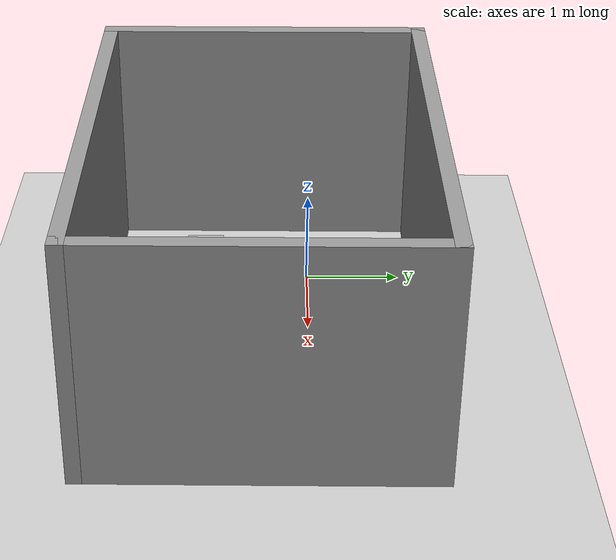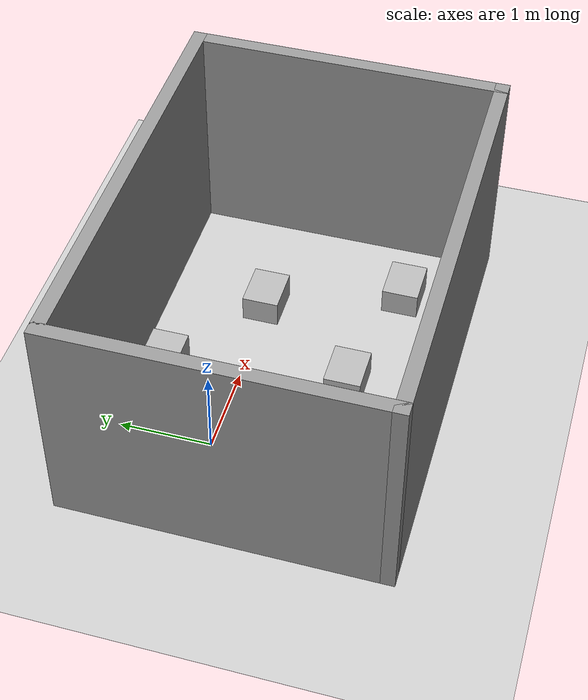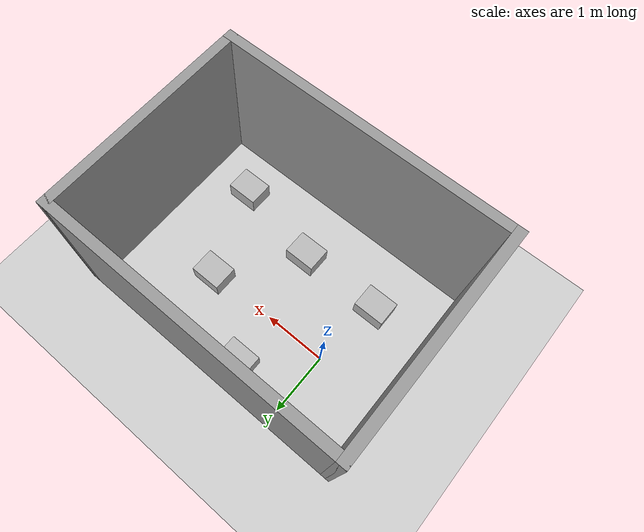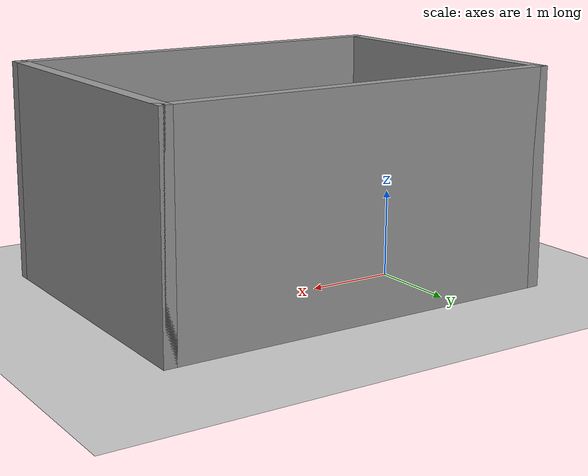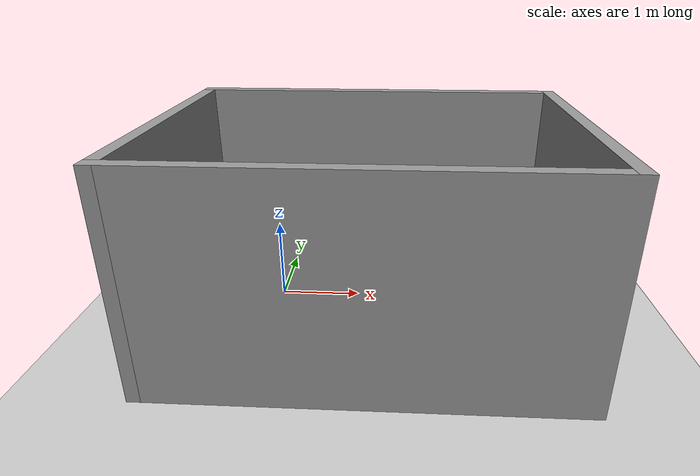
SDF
<sdf version="1.7">
 <world name="default">
  <light name="sun" type="directional">
   <pose>0 0 10 0 -0 0</pose>
   <diffuse>0.8 0.8 0.8 1</diffuse>
   <specular>0.2 0.2 0.2 1</specular>
   <attenuation>
    <range>1000</range>
    <constant>0.9</constant>
    <linear>0.01</linear>
    <quadratic>0.001</quadratic>
   </attenuation>
   <direction>-0.5 0.1 -0.9</direction>
   <spot><inner_angle>0</inner_angle><outer_angle>0</outer_angle><falloff>0</falloff></spot>
  </light>
  <model name="ground_plane">
   <static>1</static>
   <link name="link">
    <collision name="collision">
     <geometry><plane><normal>0 0 1</normal><size>100 100</size></plane></geometry>
     <surface>
      <contact><collide_bitmask>65535</collide_bitmask></contact>
      <friction><ode><mu>100</mu><mu2>50</mu2></ode></friction>
     </surface>
    </collision>
    <visual name="visual">
     <cast_shadows>0</cast_shadows>
     <geometry><plane><normal>0 0 1</normal><size>100 100</size></plane></geometry>
     <material>
      <script><uri>file://media/materials/scripts/gazebo.material</uri><name>Gazebo/Grey</name></script>
     </material>
    </visual>
   </link>
  </model>
  <gravity>0 0 -9.8</gravity>
  <magnetic_field>6e-06 2.3e-05 -4.2e-05</magnetic_field>
  <atmosphere type="adiabatic"/>
  <physics type="ode">
   <max_step_size>0.001</max_step_size>
   <real_time_factor>1</real_time_factor>
   <real_time_update_rate>1000</real_time_update_rate>
  </physics>
  <scene><ambient>0.4 0.4 0.4 1</ambient><background>0.7 0.7 0.7 1</background><shadows>1</shadows></scene>
  <spherical_coordinates>
   <surface_model>EARTH_WGS84</surface_model>
   <latitude_deg>0</latitude_deg>
   <longitude_deg>0</longitude_deg>
   <elevation>0</elevation>
   <heading_deg>0</heading_deg>
  </spherical_coordinates>
  <model name="super_small_room">
   <pose>1.19529 -0.4787 0 0 -0 0</pose>
   <link name="Wall_13">
    <collision name="Wall_13_Collision">
     <geometry><box><size>4.75 0.15 2.5</size></box></geometry>
     <pose>0 0 1.25 0 -0 0</pose>
    </collision>
    <visual name="Wall_13_Visual">
     <pose>0 0 1.25 0 -0 0</pose>
     <geometry><box><size>4.75 0.15 2.5</size></box></geometry>
     <material>
      <script><uri>file://media/materials/scripts/gazebo.material</uri><name>Gazebo/Grey</name></script>
      <ambient>1 1 1 1</ambient>
     </material>
     <meta><layer>0</layer></meta>
    </visual>
    <pose>-0 1.675 0 0 -0 0</pose>
   </link>
   <link name="Wall_14">
    <collision name="Wall_14_Collision">
     <geometry><box><size>3.5 0.15 2.5</size></box></geometry>
     <pose>0 0 1.25 0 -0 0</pose>
    </collision>
    <visual name="Wall_14_Visual">
     <pose>0 0 1.25 0 -0 0</pose>
     <geometry><box><size>3.5 0.15 2.5</size></box></geometry>
     <material>
      <script><uri>file://media/materials/scripts/gazebo.material</uri><name>Gazebo/Grey</name></script>
      <ambient>1 1 1 1</ambient>
     </material>
     <meta><layer>0</layer></meta>
    </visual>
    <pose>2.3 -0 0 0 -0 -1.5708</pose>
   </link>
   <link name="Wall_15">
    <collision name="Wall_15_Collision">
     <geometry><box><size>4.75 0.15 2.5</size></box></geometry>
     <pose>0 0 1.25 0 -0 0</pose>
    </collision>
    <visual name="Wall_15_Visual">
     <pose>0 0 1.25 0 -0 0</pose>
     <geometry><box><size>4.75 0.15 2.5</size></box></geometry>
     <material>
      <script><uri>file://media/materials/scripts/gazebo.material</uri><name>Gazebo/Grey</name></script>
      <ambient>1 1 1 1</ambient>
     </material>
     <meta><layer>0</layer></meta>
    </visual>
    <pose>-0 -1.675 0 0 -0 3.14159</pose>
   </link>
   <link name="Wall_16">
    <collision name="Wall_16_Collision">
     <geometry><box><size>3.5 0.15 2.5</size></box></geometry>
     <pose>0 0 1.25 0 -0 0</pose>
    </collision>
    <visual name="Wall_16_Visual">
     <pose>0 0 1.25 0 -0 0</pose>
     <geometry><box><size>3.5 0.15 2.5</size></box></geometry>
     <material>
      <script><uri>file://media/materials/scripts/gazebo.material</uri><name>Gazebo/Grey</name></script>
      <ambient>1 1 1 1</ambient>
     </material>
     <meta><layer>0</layer></meta>
    </visual>
    <pose>-2.3 -0 0 0 -0 1.5708</pose>
   </link>
   <static>1</static>
  </model>
  <model name="cardboard_box">
   <pose>2.10104 0.032089 0.149 0 -0 0</pose>
   <link name="link">
    <inertial>
     <mass>2</mass>
     <inertia>
      <ixx>0.0416667</ixx>
      <ixy>0</ixy>
      <ixz>0</ixz>
      <iyy>0.0566667</iyy>
      <iyz>0</iyz>
      <izz>0.0683333</izz>
     </inertia>
    </inertial>
    <collision name="collision">
     <geometry><box><size>0.5 0.4 0.3</size></box></geometry>
     <surface>
      <friction><ode><mu>1</mu><mu2>1</mu2></ode></friction>
      <contact><ode><kp>1e+07</kp><kd>1</kd><min_depth>0.001</min_depth><max_vel>0.1</max_vel></ode></contact>
     </surface>
    </collision>
    <visual name="visual">
     <pose>0 0 -0.15 0 -0 0</pose>
     <geometry>
      <mesh><uri>model://cardboard_box/meshes/cardboard_box.dae</uri><scale>1.25932 1.00745 0.755591</scale></mesh>
     </geometry>
    </visual>
   </link>
  </model>
  <model name="cardboard_box_clone">
   <pose>1.19733 -1.13751 0.149 0 -0 0</pose>
   <link name="link">
    <inertial>
     <mass>2</mass>
     <inertia>
      <ixx>0.0416667</ixx>
      <ixy>0</ixy>
      <ixz>0</ixz>
      <iyy>0.0566667</iyy>
      <iyz>0</iyz>
      <izz>0.0683333</izz>
     </inertia>
    </inertial>
    <collision name="collision">
     <geometry><box><size>0.5 0.4 0.3</size></box></geometry>
     <surface>
      <friction><ode><mu>1</mu><mu2>1</mu2></ode></friction>
      <contact><ode><kp>1e+07</kp><kd>1</kd><min_depth>0.001</min_depth><max_vel>0.1</max_vel></ode></contact>
     </surface>
    </collision>
    <visual name="visual">
     <pose>0 0 -0.15 0 -0 0</pose>
     <geometry>
      <mesh><uri>model://cardboard_box/meshes/cardboard_box.dae</uri><scale>1.25932 1.00745 0.755591</scale></mesh>
     </geometry>
    </visual>
   </link>
  </model>
  <model name="cardboard_box_clone_clone">
   <pose>2.64291 -1.4264 0.149 0 -0 0</pose>
   <link name="link">
    <inertial>
     <mass>2</mass>
     <inertia>
      <ixx>0.0416667</ixx>
      <ixy>0</ixy>
      <ixz>0</ixz>
      <iyy>0.0566667</iyy>
      <iyz>0</iyz>
      <izz>0.0683333</izz>
     </inertia>
    </inertial>
    <collision name="collision">
     <geometry><box><size>0.5 0.4 0.3</size></box></geometry>
     <surface>
      <friction><ode><mu>1</mu><mu2>1</mu2></ode></friction>
      <contact><ode><kp>1e+07</kp><kd>1</kd><min_depth>0.001</min_depth><max_vel>0.1</max_vel></ode></contact>
     </surface>
    </collision>
    <visual name="visual">
     <pose>0 0 -0.15 0 -0 0</pose>
     <geometry>
      <mesh><uri>model://cardboard_box/meshes/cardboard_box.dae</uri><scale>1.25932 1.00745 0.755591</scale></mesh>
     </geometry>
    </visual>
   </link>
  </model>
  <model name="cardboard_box_clone_clone_0">
   <pose>-0.153004 -1.13054 0.149 0 -0 0</pose>
   <link name="link">
    <inertial>
     <mass>2</mass>
     <inertia>
      <ixx>0.0416667</ixx>
      <ixy>0</ixy>
      <ixz>0</ixz>
      <iyy>0.0566667</iyy>
      <iyz>0</iyz>
      <izz>0.0683333</izz>
     </inertia>
    </inertial>
    <collision name="collision">
     <geometry><box><size>0.5 0.4 0.3</size></box></geometry>
     <surface>
      <friction><ode><mu>1</mu><mu2>1</mu2></ode></friction>
      <contact><ode><kp>1e+07</kp><kd>1</kd><min_depth>0.001</min_depth><max_vel>0.1</max_vel></ode></contact>
     </surface>
    </collision>
    <visual name="visual">
     <pose>0 0 -0.15 0 -0 0</pose>
     <geometry>
      <mesh><uri>model://cardboard_box/meshes/cardboard_box.dae</uri><scale>1.25932 1.00745 0.755591</scale></mesh>
     </geometry>
    </visual>
   </link>
  </model>
  <model name="cardboard_box_clone_clone_1">
   <pose>0.90053 0.824518 0.149 0 -0 0</pose>
   <link name="link">
    <inertial>
     <mass>2</mass>
     <inertia>
      <ixx>0.0416667</ixx>
      <ixy>0</ixy>
      <ixz>0</ixz>
      <iyy>0.0566667</iyy>
      <iyz>0</iyz>
      <izz>0.0683333</izz>
     </inertia>
    </inertial>
    <collision name="collision">
     <geometry><box><size>0.5 0.4 0.3</size></box></geometry>
     <surface>
      <friction><ode><mu>1</mu><mu2>1</mu2></ode></friction>
      <contact><ode><kp>1e+07</kp><kd>1</kd><min_depth>0.001</min_depth><max_vel>0.1</max_vel></ode></contact>
     </surface>
    </collision>
    <visual name="visual">
     <pose>0 0 -0.15 0 -0 0</pose>
     <geometry>
      <mesh><uri>model://cardboard_box/meshes/cardboard_box.dae</uri><scale>1.25932 1.00745 0.755591</scale></mesh>
     </geometry>
    </visual>
   </link>
  </model>
 </world>
</sdf>
